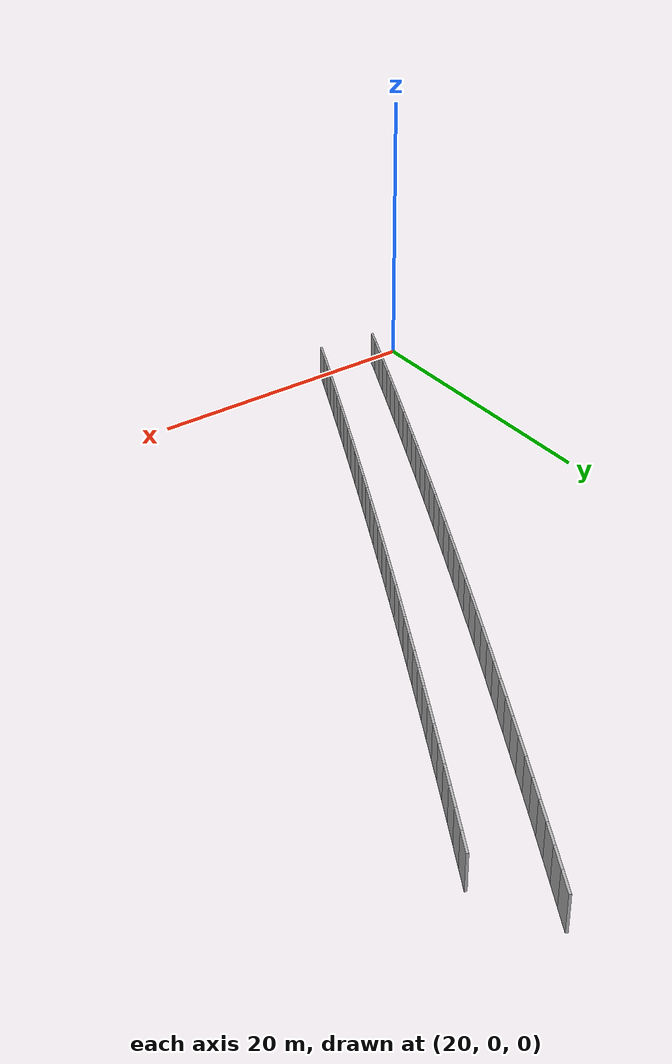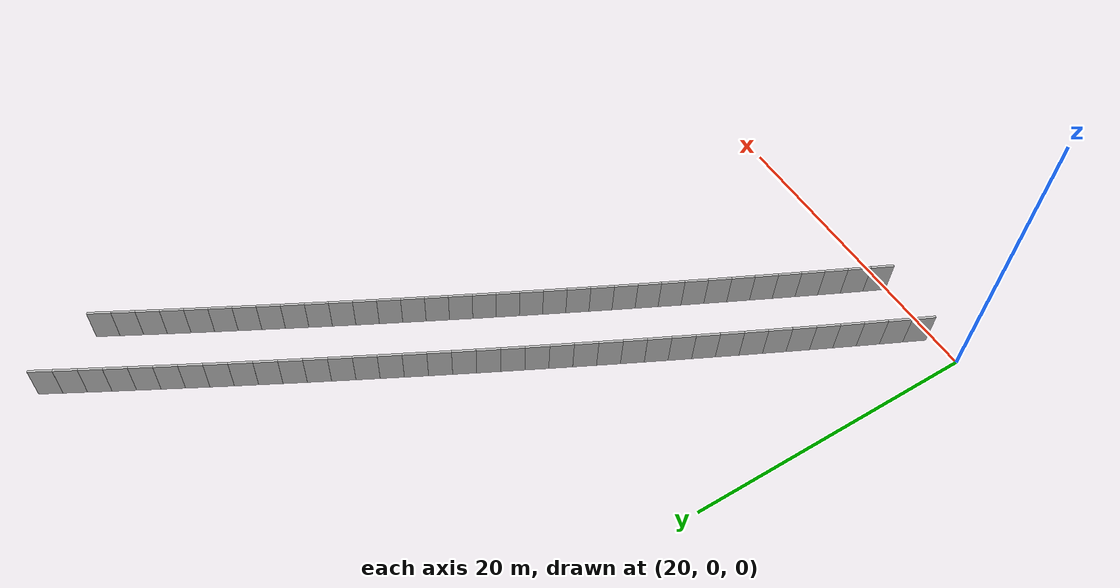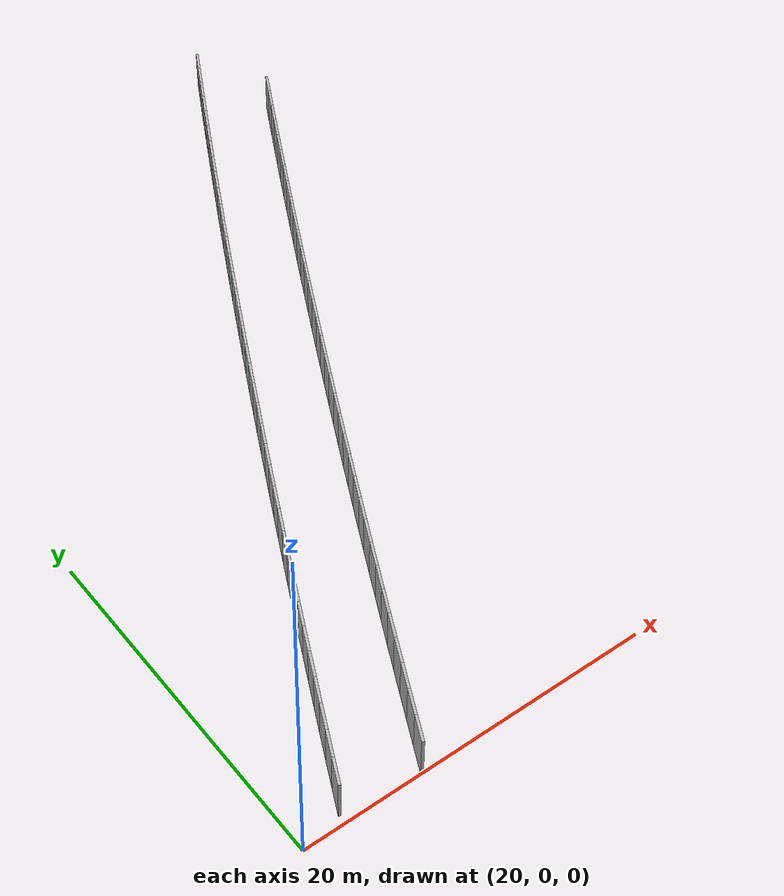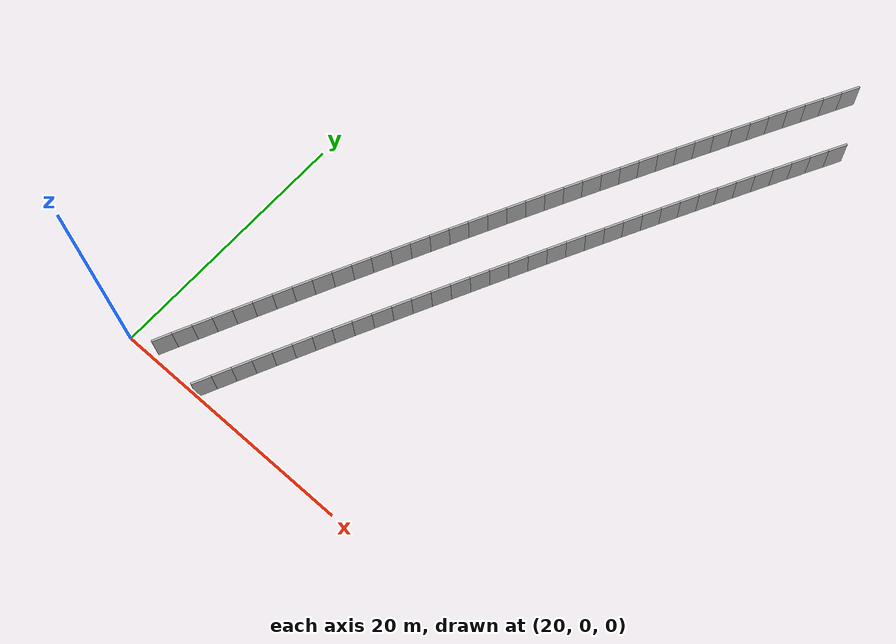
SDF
<?xml version="1.0" ?>
<sdf version="1.6">
  <model name="sps_0434">
    <pose frame="">0 0 0 0 -0 0</pose>
    <static>1</static>
    <self_collide>0</self_collide>
    <allow_auto_disable>0</allow_auto_disable>
    <link name="Wall4893">
      <kinematic>0</kinematic>
      <gravity>1</gravity>
      <self_collide>0</self_collide>
      <collision name="collision">
        <geometry>
          <box>
            <size>1.49651 0.15 2.5</size>
          </box>
        </geometry>
        <pose frame="">0 0 0 0 -0 0</pose>
      </collision>
      <visual name="visual">
        <geometry>
          <box>
            <size>1.49651 0.15 2.5</size>
          </box>
        </geometry>
        <pose frame="">0 0 0 0 -0 0</pose>
        <cast_shadows>1</cast_shadows>
        <transparency>0.0</transparency>
      </visual>
      <pose frame="">49.5471 44.6644 1.25 0 0 -2.06954</pose>
    </link>
    <link name="Wall4894">
      <kinematic>0</kinematic>
      <gravity>1</gravity>
      <self_collide>0</self_collide>
      <collision name="collision">
        <geometry>
          <box>
            <size>1.49649 0.15 2.5</size>
          </box>
        </geometry>
        <pose frame="">0 0 0 0 -0 0</pose>
      </collision>
      <visual name="visual">
        <geometry>
          <box>
            <size>1.49649 0.15 2.5</size>
          </box>
        </geometry>
        <pose frame="">0 0 0 0 -0 0</pose>
        <cast_shadows>1</cast_shadows>
        <transparency>0.0</transparency>
      </visual>
      <pose frame="">48.8322 43.3497 1.25 0 0 -2.06816</pose>
    </link>
    <link name="Wall4895">
      <kinematic>0</kinematic>
      <gravity>1</gravity>
      <self_collide>0</self_collide>
      <collision name="collision">
        <geometry>
          <box>
            <size>1.49645 0.15 2.5</size>
          </box>
        </geometry>
        <pose frame="">0 0 0 0 -0 0</pose>
      </collision>
      <visual name="visual">
        <geometry>
          <box>
            <size>1.49645 0.15 2.5</size>
          </box>
        </geometry>
        <pose frame="">0 0 0 0 -0 0</pose>
        <cast_shadows>1</cast_shadows>
        <transparency>0.0</transparency>
      </visual>
      <pose frame="">48.1193 42.034 1.25 0 0 -2.06664</pose>
    </link>
    <link name="Wall4896">
      <kinematic>0</kinematic>
      <gravity>1</gravity>
      <self_collide>0</self_collide>
      <collision name="collision">
        <geometry>
          <box>
            <size>1.49661 0.15 2.5</size>
          </box>
        </geometry>
        <pose frame="">0 0 0 0 -0 0</pose>
      </collision>
      <visual name="visual">
        <geometry>
          <box>
            <size>1.49661 0.15 2.5</size>
          </box>
        </geometry>
        <pose frame="">0 0 0 0 -0 0</pose>
        <cast_shadows>1</cast_shadows>
        <transparency>0.0</transparency>
      </visual>
      <pose frame="">47.4083 40.7171 1.25 0 0 -2.06496</pose>
    </link>
    <link name="Wall4897">
      <kinematic>0</kinematic>
      <gravity>1</gravity>
      <self_collide>0</self_collide>
      <collision name="collision">
        <geometry>
          <box>
            <size>1.49646 0.15 2.5</size>
          </box>
        </geometry>
        <pose frame="">0 0 0 0 -0 0</pose>
      </collision>
      <visual name="visual">
        <geometry>
          <box>
            <size>1.49646 0.15 2.5</size>
          </box>
        </geometry>
        <pose frame="">0 0 0 0 -0 0</pose>
        <cast_shadows>1</cast_shadows>
        <transparency>0.0</transparency>
      </visual>
      <pose frame="">46.6996 39.399 1.25 0 0 -2.0633</pose>
    </link>
    <link name="Wall4898">
      <kinematic>0</kinematic>
      <gravity>1</gravity>
      <self_collide>0</self_collide>
      <collision name="collision">
        <geometry>
          <box>
            <size>1.49658 0.15 2.5</size>
          </box>
        </geometry>
        <pose frame="">0 0 0 0 -0 0</pose>
      </collision>
      <visual name="visual">
        <geometry>
          <box>
            <size>1.49658 0.15 2.5</size>
          </box>
        </geometry>
        <pose frame="">0 0 0 0 -0 0</pose>
        <cast_shadows>1</cast_shadows>
        <transparency>0.0</transparency>
      </visual>
      <pose frame="">45.9931 38.0798 1.25 0 0 -2.06173</pose>
    </link>
    <link name="Wall4899">
      <kinematic>0</kinematic>
      <gravity>1</gravity>
      <self_collide>0</self_collide>
      <collision name="collision">
        <geometry>
          <box>
            <size>1.49652 0.15 2.5</size>
          </box>
        </geometry>
        <pose frame="">0 0 0 0 -0 0</pose>
      </collision>
      <visual name="visual">
        <geometry>
          <box>
            <size>1.49652 0.15 2.5</size>
          </box>
        </geometry>
        <pose frame="">0 0 0 0 -0 0</pose>
        <cast_shadows>1</cast_shadows>
        <transparency>0.0</transparency>
      </visual>
      <pose frame="">45.2885 36.7595 1.25 0 0 -2.06027</pose>
    </link>
    <link name="Wall4900">
      <kinematic>0</kinematic>
      <gravity>1</gravity>
      <self_collide>0</self_collide>
      <collision name="collision">
        <geometry>
          <box>
            <size>1.49652 0.15 2.5</size>
          </box>
        </geometry>
        <pose frame="">0 0 0 0 -0 0</pose>
      </collision>
      <visual name="visual">
        <geometry>
          <box>
            <size>1.49652 0.15 2.5</size>
          </box>
        </geometry>
        <pose frame="">0 0 0 0 -0 0</pose>
        <cast_shadows>1</cast_shadows>
        <transparency>0.0</transparency>
      </visual>
      <pose frame="">44.586 35.4381 1.25 0 0 -2.05861</pose>
    </link>
    <link name="Wall4901">
      <kinematic>0</kinematic>
      <gravity>1</gravity>
      <self_collide>0</self_collide>
      <collision name="collision">
        <geometry>
          <box>
            <size>1.49641 0.15 2.5</size>
          </box>
        </geometry>
        <pose frame="">0 0 0 0 -0 0</pose>
      </collision>
      <visual name="visual">
        <geometry>
          <box>
            <size>1.49641 0.15 2.5</size>
          </box>
        </geometry>
        <pose frame="">0 0 0 0 -0 0</pose>
        <cast_shadows>1</cast_shadows>
        <transparency>0.0</transparency>
      </visual>
      <pose frame="">43.8856 34.1156 1.25 0 0 -2.05699</pose>
    </link>
    <link name="Wall4902">
      <kinematic>0</kinematic>
      <gravity>1</gravity>
      <self_collide>0</self_collide>
      <collision name="collision">
        <geometry>
          <box>
            <size>1.49655 0.15 2.5</size>
          </box>
        </geometry>
        <pose frame="">0 0 0 0 -0 0</pose>
      </collision>
      <visual name="visual">
        <geometry>
          <box>
            <size>1.49655 0.15 2.5</size>
          </box>
        </geometry>
        <pose frame="">0 0 0 0 -0 0</pose>
        <cast_shadows>1</cast_shadows>
        <transparency>0.0</transparency>
      </visual>
      <pose frame="">43.1874 32.792 1.25 0 0 -2.05542</pose>
    </link>
    <link name="Wall4903">
      <kinematic>0</kinematic>
      <gravity>1</gravity>
      <self_collide>0</self_collide>
      <collision name="collision">
        <geometry>
          <box>
            <size>1.49647 0.15 2.5</size>
          </box>
        </geometry>
        <pose frame="">0 0 0 0 -0 0</pose>
      </collision>
      <visual name="visual">
        <geometry>
          <box>
            <size>1.49647 0.15 2.5</size>
          </box>
        </geometry>
        <pose frame="">0 0 0 0 -0 0</pose>
        <cast_shadows>1</cast_shadows>
        <transparency>0.0</transparency>
      </visual>
      <pose frame="">42.4912 31.4673 1.25 0 0 -2.05393</pose>
    </link>
    <link name="Wall4904">
      <kinematic>0</kinematic>
      <gravity>1</gravity>
      <self_collide>0</self_collide>
      <collision name="collision">
        <geometry>
          <box>
            <size>1.49654 0.15 2.5</size>
          </box>
        </geometry>
        <pose frame="">0 0 0 0 -0 0</pose>
      </collision>
      <visual name="visual">
        <geometry>
          <box>
            <size>1.49654 0.15 2.5</size>
          </box>
        </geometry>
        <pose frame="">0 0 0 0 -0 0</pose>
        <cast_shadows>1</cast_shadows>
        <transparency>0.0</transparency>
      </visual>
      <pose frame="">41.7971 30.1415 1.25 0 0 -2.05225</pose>
    </link>
    <link name="Wall4905">
      <kinematic>0</kinematic>
      <gravity>1</gravity>
      <self_collide>0</self_collide>
      <collision name="collision">
        <geometry>
          <box>
            <size>1.49655 0.15 2.5</size>
          </box>
        </geometry>
        <pose frame="">0 0 0 0 -0 0</pose>
      </collision>
      <visual name="visual">
        <geometry>
          <box>
            <size>1.49655 0.15 2.5</size>
          </box>
        </geometry>
        <pose frame="">0 0 0 0 -0 0</pose>
        <cast_shadows>1</cast_shadows>
        <transparency>0.0</transparency>
      </visual>
      <pose frame="">41.1052 28.8145 1.25 0 0 -2.05059</pose>
    </link>
    <link name="Wall4906">
      <kinematic>0</kinematic>
      <gravity>1</gravity>
      <self_collide>0</self_collide>
      <collision name="collision">
        <geometry>
          <box>
            <size>1.49662 0.15 2.5</size>
          </box>
        </geometry>
        <pose frame="">0 0 0 0 -0 0</pose>
      </collision>
      <visual name="visual">
        <geometry>
          <box>
            <size>1.49662 0.15 2.5</size>
          </box>
        </geometry>
        <pose frame="">0 0 0 0 -0 0</pose>
        <cast_shadows>1</cast_shadows>
        <transparency>0.0</transparency>
      </visual>
      <pose frame="">40.4154 27.4864 1.25 0 0 -2.04918</pose>
    </link>
    <link name="Wall4907">
      <kinematic>0</kinematic>
      <gravity>1</gravity>
      <self_collide>0</self_collide>
      <collision name="collision">
        <geometry>
          <box>
            <size>1.49651 0.15 2.5</size>
          </box>
        </geometry>
        <pose frame="">0 0 0 0 -0 0</pose>
      </collision>
      <visual name="visual">
        <geometry>
          <box>
            <size>1.49651 0.15 2.5</size>
          </box>
        </geometry>
        <pose frame="">0 0 0 0 -0 0</pose>
        <cast_shadows>1</cast_shadows>
        <transparency>0.0</transparency>
      </visual>
      <pose frame="">39.7275 26.1573 1.25 0 0 -2.04761</pose>
    </link>
    <link name="Wall4908">
      <kinematic>0</kinematic>
      <gravity>1</gravity>
      <self_collide>0</self_collide>
      <collision name="collision">
        <geometry>
          <box>
            <size>1.49656 0.15 2.5</size>
          </box>
        </geometry>
        <pose frame="">0 0 0 0 -0 0</pose>
      </collision>
      <visual name="visual">
        <geometry>
          <box>
            <size>1.49656 0.15 2.5</size>
          </box>
        </geometry>
        <pose frame="">0 0 0 0 -0 0</pose>
        <cast_shadows>1</cast_shadows>
        <transparency>0.0</transparency>
      </visual>
      <pose frame="">39.0418 24.8271 1.25 0 0 -2.0459</pose>
    </link>
    <link name="Wall4909">
      <kinematic>0</kinematic>
      <gravity>1</gravity>
      <self_collide>0</self_collide>
      <collision name="collision">
        <geometry>
          <box>
            <size>1.49645 0.15 2.5</size>
          </box>
        </geometry>
        <pose frame="">0 0 0 0 -0 0</pose>
      </collision>
      <visual name="visual">
        <geometry>
          <box>
            <size>1.49645 0.15 2.5</size>
          </box>
        </geometry>
        <pose frame="">0 0 0 0 -0 0</pose>
        <cast_shadows>1</cast_shadows>
        <transparency>0.0</transparency>
      </visual>
      <pose frame="">38.3583 23.4958 1.25 0 0 -2.04433</pose>
    </link>
    <link name="Wall4910">
      <kinematic>0</kinematic>
      <gravity>1</gravity>
      <self_collide>0</self_collide>
      <collision name="collision">
        <geometry>
          <box>
            <size>1.49646 0.15 2.5</size>
          </box>
        </geometry>
        <pose frame="">0 0 0 0 -0 0</pose>
      </collision>
      <visual name="visual">
        <geometry>
          <box>
            <size>1.49646 0.15 2.5</size>
          </box>
        </geometry>
        <pose frame="">0 0 0 0 -0 0</pose>
        <cast_shadows>1</cast_shadows>
        <transparency>0.0</transparency>
      </visual>
      <pose frame="">37.6768 22.1635 1.25 0 0 -2.04282</pose>
    </link>
    <link name="Wall4911">
      <kinematic>0</kinematic>
      <gravity>1</gravity>
      <self_collide>0</self_collide>
      <collision name="collision">
        <geometry>
          <box>
            <size>1.49647 0.15 2.5</size>
          </box>
        </geometry>
        <pose frame="">0 0 0 0 -0 0</pose>
      </collision>
      <visual name="visual">
        <geometry>
          <box>
            <size>1.49647 0.15 2.5</size>
          </box>
        </geometry>
        <pose frame="">0 0 0 0 -0 0</pose>
        <cast_shadows>1</cast_shadows>
        <transparency>0.0</transparency>
      </visual>
      <pose frame="">36.9976 20.8301 1.25 0 0 -2.04112</pose>
    </link>
    <link name="Wall4912">
      <kinematic>0</kinematic>
      <gravity>1</gravity>
      <self_collide>0</self_collide>
      <collision name="collision">
        <geometry>
          <box>
            <size>1.49651 0.15 2.5</size>
          </box>
        </geometry>
        <pose frame="">0 0 0 0 -0 0</pose>
      </collision>
      <visual name="visual">
        <geometry>
          <box>
            <size>1.49651 0.15 2.5</size>
          </box>
        </geometry>
        <pose frame="">0 0 0 0 -0 0</pose>
        <cast_shadows>1</cast_shadows>
        <transparency>0.0</transparency>
      </visual>
      <pose frame="">36.3204 19.4956 1.25 0 0 -2.03964</pose>
    </link>
    <link name="Wall4913">
      <kinematic>0</kinematic>
      <gravity>1</gravity>
      <self_collide>0</self_collide>
      <collision name="collision">
        <geometry>
          <box>
            <size>1.49655 0.15 2.5</size>
          </box>
        </geometry>
        <pose frame="">0 0 0 0 -0 0</pose>
      </collision>
      <visual name="visual">
        <geometry>
          <box>
            <size>1.49655 0.15 2.5</size>
          </box>
        </geometry>
        <pose frame="">0 0 0 0 -0 0</pose>
        <cast_shadows>1</cast_shadows>
        <transparency>0.0</transparency>
      </visual>
      <pose frame="">35.6453 18.16 1.25 0 0 -2.03798</pose>
    </link>
    <link name="Wall4914">
      <kinematic>0</kinematic>
      <gravity>1</gravity>
      <self_collide>0</self_collide>
      <collision name="collision">
        <geometry>
          <box>
            <size>1.49628 0.15 2.5</size>
          </box>
        </geometry>
        <pose frame="">0 0 0 0 -0 0</pose>
      </collision>
      <visual name="visual">
        <geometry>
          <box>
            <size>1.49628 0.15 2.5</size>
          </box>
        </geometry>
        <pose frame="">0 0 0 0 -0 0</pose>
        <cast_shadows>1</cast_shadows>
        <transparency>0.0</transparency>
      </visual>
      <pose frame="">34.9722 16.8235 1.25 0 0 -2.03671</pose>
    </link>
    <link name="Wall4915">
      <kinematic>0</kinematic>
      <gravity>1</gravity>
      <self_collide>0</self_collide>
      <collision name="collision">
        <geometry>
          <box>
            <size>1.49646 0.15 2.5</size>
          </box>
        </geometry>
        <pose frame="">0 0 0 0 -0 0</pose>
      </collision>
      <visual name="visual">
        <geometry>
          <box>
            <size>1.49646 0.15 2.5</size>
          </box>
        </geometry>
        <pose frame="">0 0 0 0 -0 0</pose>
        <cast_shadows>1</cast_shadows>
        <transparency>0.0</transparency>
      </visual>
      <pose frame="">34.3012 15.486 1.25 0 0 -2.03486</pose>
    </link>
    <link name="Wall4916">
      <kinematic>0</kinematic>
      <gravity>1</gravity>
      <self_collide>0</self_collide>
      <collision name="collision">
        <geometry>
          <box>
            <size>1.49657 0.15 2.5</size>
          </box>
        </geometry>
        <pose frame="">0 0 0 0 -0 0</pose>
      </collision>
      <visual name="visual">
        <geometry>
          <box>
            <size>1.49657 0.15 2.5</size>
          </box>
        </geometry>
        <pose frame="">0 0 0 0 -0 0</pose>
        <cast_shadows>1</cast_shadows>
        <transparency>0.0</transparency>
      </visual>
      <pose frame="">33.6325 14.1472 1.25 0 0 -2.03319</pose>
    </link>
    <link name="Wall4917">
      <kinematic>0</kinematic>
      <gravity>1</gravity>
      <self_collide>0</self_collide>
      <collision name="collision">
        <geometry>
          <box>
            <size>1.49655 0.15 2.5</size>
          </box>
        </geometry>
        <pose frame="">0 0 0 0 -0 0</pose>
      </collision>
      <visual name="visual">
        <geometry>
          <box>
            <size>1.49655 0.15 2.5</size>
          </box>
        </geometry>
        <pose frame="">0 0 0 0 -0 0</pose>
        <cast_shadows>1</cast_shadows>
        <transparency>0.0</transparency>
      </visual>
      <pose frame="">32.9659 12.8073 1.25 0 0 -2.03169</pose>
    </link>
    <link name="Wall4918">
      <kinematic>0</kinematic>
      <gravity>1</gravity>
      <self_collide>0</self_collide>
      <collision name="collision">
        <geometry>
          <box>
            <size>1.49653 0.15 2.5</size>
          </box>
        </geometry>
        <pose frame="">0 0 0 0 -0 0</pose>
      </collision>
      <visual name="visual">
        <geometry>
          <box>
            <size>1.49653 0.15 2.5</size>
          </box>
        </geometry>
        <pose frame="">0 0 0 0 -0 0</pose>
        <cast_shadows>1</cast_shadows>
        <transparency>0.0</transparency>
      </visual>
      <pose frame="">32.3014 11.4664 1.25 0 0 -2.0301</pose>
    </link>
    <link name="Wall4919">
      <kinematic>0</kinematic>
      <gravity>1</gravity>
      <self_collide>0</self_collide>
      <collision name="collision">
        <geometry>
          <box>
            <size>1.49657 0.15 2.5</size>
          </box>
        </geometry>
        <pose frame="">0 0 0 0 -0 0</pose>
      </collision>
      <visual name="visual">
        <geometry>
          <box>
            <size>1.49657 0.15 2.5</size>
          </box>
        </geometry>
        <pose frame="">0 0 0 0 -0 0</pose>
        <cast_shadows>1</cast_shadows>
        <transparency>0.0</transparency>
      </visual>
      <pose frame="">31.639 10.1244 1.25 0 0 -2.02841</pose>
    </link>
    <link name="Wall4920">
      <kinematic>0</kinematic>
      <gravity>1</gravity>
      <self_collide>0</self_collide>
      <collision name="collision">
        <geometry>
          <box>
            <size>1.49639 0.15 2.5</size>
          </box>
        </geometry>
        <pose frame="">0 0 0 0 -0 0</pose>
      </collision>
      <visual name="visual">
        <geometry>
          <box>
            <size>1.49639 0.15 2.5</size>
          </box>
        </geometry>
        <pose frame="">0 0 0 0 -0 0</pose>
        <cast_shadows>1</cast_shadows>
        <transparency>0.0</transparency>
      </visual>
      <pose frame="">30.9788 8.78139 1.25 0 0 -2.02697</pose>
    </link>
    <link name="Wall4921">
      <kinematic>0</kinematic>
      <gravity>1</gravity>
      <self_collide>0</self_collide>
      <collision name="collision">
        <geometry>
          <box>
            <size>1.49653 0.15 2.5</size>
          </box>
        </geometry>
        <pose frame="">0 0 0 0 -0 0</pose>
      </collision>
      <visual name="visual">
        <geometry>
          <box>
            <size>1.49653 0.15 2.5</size>
          </box>
        </geometry>
        <pose frame="">0 0 0 0 -0 0</pose>
        <cast_shadows>1</cast_shadows>
        <transparency>0.0</transparency>
      </visual>
      <pose frame="">30.3208 7.43739 1.25 0 0 -2.02529</pose>
    </link>
    <link name="Wall4922">
      <kinematic>0</kinematic>
      <gravity>1</gravity>
      <self_collide>0</self_collide>
      <collision name="collision">
        <geometry>
          <box>
            <size>1.49655 0.15 2.5</size>
          </box>
        </geometry>
        <pose frame="">0 0 0 0 -0 0</pose>
      </collision>
      <visual name="visual">
        <geometry>
          <box>
            <size>1.49655 0.15 2.5</size>
          </box>
        </geometry>
        <pose frame="">0 0 0 0 -0 0</pose>
        <cast_shadows>1</cast_shadows>
        <transparency>0.0</transparency>
      </visual>
      <pose frame="">29.6648 6.0923 1.25 0 0 -2.02383</pose>
    </link>
    <link name="Wall4923">
      <kinematic>0</kinematic>
      <gravity>1</gravity>
      <self_collide>0</self_collide>
      <collision name="collision">
        <geometry>
          <box>
            <size>1.49649 0.15 2.5</size>
          </box>
        </geometry>
        <pose frame="">0 0 0 0 -0 0</pose>
      </collision>
      <visual name="visual">
        <geometry>
          <box>
            <size>1.49649 0.15 2.5</size>
          </box>
        </geometry>
        <pose frame="">0 0 0 0 -0 0</pose>
        <cast_shadows>1</cast_shadows>
        <transparency>0.0</transparency>
      </visual>
      <pose frame="">29.0109 4.7462 1.25 0 0 -2.02217</pose>
    </link>
    <link name="Wall4924">
      <kinematic>0</kinematic>
      <gravity>1</gravity>
      <self_collide>0</self_collide>
      <collision name="collision">
        <geometry>
          <box>
            <size>1.49683 0.15 2.5</size>
          </box>
        </geometry>
        <pose frame="">0 0 0 0 -0 0</pose>
      </collision>
      <visual name="visual">
        <geometry>
          <box>
            <size>1.49683 0.15 2.5</size>
          </box>
        </geometry>
        <pose frame="">0 0 0 0 -0 0</pose>
        <cast_shadows>1</cast_shadows>
        <transparency>0.0</transparency>
      </visual>
      <pose frame="">28.3592 3.39888 1.25 0 0 -2.02047</pose>
    </link>
    <link name="Wall4925">
      <kinematic>0</kinematic>
      <gravity>1</gravity>
      <self_collide>0</self_collide>
      <collision name="collision">
        <geometry>
          <box>
            <size>1.49651 0.15 2.5</size>
          </box>
        </geometry>
        <pose frame="">0 0 0 0 -0 0</pose>
      </collision>
      <visual name="visual">
        <geometry>
          <box>
            <size>1.49651 0.15 2.5</size>
          </box>
        </geometry>
        <pose frame="">0 0 0 0 -0 0</pose>
        <cast_shadows>1</cast_shadows>
        <transparency>0.0</transparency>
      </visual>
      <pose frame="">27.7096 2.05049 1.25 0 0 -2.0189</pose>
    </link>
    <link name="Wall4926">
      <kinematic>0</kinematic>
      <gravity>1</gravity>
      <self_collide>0</self_collide>
      <collision name="collision">
        <geometry>
          <box>
            <size>1.49643 0.15 2.5</size>
          </box>
        </geometry>
        <pose frame="">0 0 0 0 -0 0</pose>
      </collision>
      <visual name="visual">
        <geometry>
          <box>
            <size>1.49643 0.15 2.5</size>
          </box>
        </geometry>
        <pose frame="">0 0 0 0 -0 0</pose>
        <cast_shadows>1</cast_shadows>
        <transparency>0.0</transparency>
      </visual>
      <pose frame="">27.0622 0.701308 1.25 0 0 -2.01748</pose>
    </link>
    <link name="Wall6687">
      <kinematic>0</kinematic>
      <gravity>1</gravity>
      <self_collide>0</self_collide>
      <collision name="collision">
        <geometry>
          <box>
            <size>1.50296 0.15 2.5</size>
          </box>
        </geometry>
        <pose frame="">0 0 0 0 -0 0</pose>
      </collision>
      <visual name="visual">
        <geometry>
          <box>
            <size>1.50296 0.15 2.5</size>
          </box>
        </geometry>
        <pose frame="">0 0 0 0 -0 0</pose>
        <cast_shadows>1</cast_shadows>
        <transparency>0.0</transparency>
      </visual>
      <pose frame="">47.3552 49.2828 1.25 0 0 -2.07299</pose>
    </link>
    <link name="Wall6688">
      <kinematic>0</kinematic>
      <gravity>1</gravity>
      <self_collide>0</self_collide>
      <collision name="collision">
        <geometry>
          <box>
            <size>1.5031 0.15 2.5</size>
          </box>
        </geometry>
        <pose frame="">0 0 0 0 -0 0</pose>
      </collision>
      <visual name="visual">
        <geometry>
          <box>
            <size>1.5031 0.15 2.5</size>
          </box>
        </geometry>
        <pose frame="">0 0 0 0 -0 0</pose>
        <cast_shadows>1</cast_shadows>
        <transparency>0.0</transparency>
      </visual>
      <pose frame="">46.6328 47.9647 1.25 0 0 -2.07123</pose>
    </link>
    <link name="Wall6689">
      <kinematic>0</kinematic>
      <gravity>1</gravity>
      <self_collide>0</self_collide>
      <collision name="collision">
        <geometry>
          <box>
            <size>1.50305 0.15 2.5</size>
          </box>
        </geometry>
        <pose frame="">0 0 0 0 -0 0</pose>
      </collision>
      <visual name="visual">
        <geometry>
          <box>
            <size>1.50305 0.15 2.5</size>
          </box>
        </geometry>
        <pose frame="">0 0 0 0 -0 0</pose>
        <cast_shadows>1</cast_shadows>
        <transparency>0.0</transparency>
      </visual>
      <pose frame="">45.9127 46.6454 1.25 0 0 -2.06972</pose>
    </link>
    <link name="Wall6690">
      <kinematic>0</kinematic>
      <gravity>1</gravity>
      <self_collide>0</self_collide>
      <collision name="collision">
        <geometry>
          <box>
            <size>1.50313 0.15 2.5</size>
          </box>
        </geometry>
        <pose frame="">0 0 0 0 -0 0</pose>
      </collision>
      <visual name="visual">
        <geometry>
          <box>
            <size>1.50313 0.15 2.5</size>
          </box>
        </geometry>
        <pose frame="">0 0 0 0 -0 0</pose>
        <cast_shadows>1</cast_shadows>
        <transparency>0.0</transparency>
      </visual>
      <pose frame="">45.1944 45.325 1.25 0 0 -2.06821</pose>
    </link>
    <link name="Wall6691">
      <kinematic>0</kinematic>
      <gravity>1</gravity>
      <self_collide>0</self_collide>
      <collision name="collision">
        <geometry>
          <box>
            <size>1.50297 0.15 2.5</size>
          </box>
        </geometry>
        <pose frame="">0 0 0 0 -0 0</pose>
      </collision>
      <visual name="visual">
        <geometry>
          <box>
            <size>1.50297 0.15 2.5</size>
          </box>
        </geometry>
        <pose frame="">0 0 0 0 -0 0</pose>
        <cast_shadows>1</cast_shadows>
        <transparency>0.0</transparency>
      </visual>
      <pose frame="">44.4784 44.0035 1.25 0 0 -2.06656</pose>
    </link>
    <link name="Wall6692">
      <kinematic>0</kinematic>
      <gravity>1</gravity>
      <self_collide>0</self_collide>
      <collision name="collision">
        <geometry>
          <box>
            <size>1.50314 0.15 2.5</size>
          </box>
        </geometry>
        <pose frame="">0 0 0 0 -0 0</pose>
      </collision>
      <visual name="visual">
        <geometry>
          <box>
            <size>1.50314 0.15 2.5</size>
          </box>
        </geometry>
        <pose frame="">0 0 0 0 -0 0</pose>
        <cast_shadows>1</cast_shadows>
        <transparency>0.0</transparency>
      </visual>
      <pose frame="">43.7645 42.6808 1.25 0 0 -2.06488</pose>
    </link>
    <link name="Wall6693">
      <kinematic>0</kinematic>
      <gravity>1</gravity>
      <self_collide>0</self_collide>
      <collision name="collision">
        <geometry>
          <box>
            <size>1.5031 0.15 2.5</size>
          </box>
        </geometry>
        <pose frame="">0 0 0 0 -0 0</pose>
      </collision>
      <visual name="visual">
        <geometry>
          <box>
            <size>1.5031 0.15 2.5</size>
          </box>
        </geometry>
        <pose frame="">0 0 0 0 -0 0</pose>
        <cast_shadows>1</cast_shadows>
        <transparency>0.0</transparency>
      </visual>
      <pose frame="">43.0526 41.3569 1.25 0 0 -2.06338</pose>
    </link>
    <link name="Wall6694">
      <kinematic>0</kinematic>
      <gravity>1</gravity>
      <self_collide>0</self_collide>
      <collision name="collision">
        <geometry>
          <box>
            <size>1.50306 0.15 2.5</size>
          </box>
        </geometry>
        <pose frame="">0 0 0 0 -0 0</pose>
      </collision>
      <visual name="visual">
        <geometry>
          <box>
            <size>1.50306 0.15 2.5</size>
          </box>
        </geometry>
        <pose frame="">0 0 0 0 -0 0</pose>
        <cast_shadows>1</cast_shadows>
        <transparency>0.0</transparency>
      </visual>
      <pose frame="">42.3428 40.032 1.25 0 0 -2.06187</pose>
    </link>
    <link name="Wall6695">
      <kinematic>0</kinematic>
      <gravity>1</gravity>
      <self_collide>0</self_collide>
      <collision name="collision">
        <geometry>
          <box>
            <size>1.50318 0.15 2.5</size>
          </box>
        </geometry>
        <pose frame="">0 0 0 0 -0 0</pose>
      </collision>
      <visual name="visual">
        <geometry>
          <box>
            <size>1.50318 0.15 2.5</size>
          </box>
        </geometry>
        <pose frame="">0 0 0 0 -0 0</pose>
        <cast_shadows>1</cast_shadows>
        <transparency>0.0</transparency>
      </visual>
      <pose frame="">41.6352 38.7059 1.25 0 0 -2.06012</pose>
    </link>
    <link name="Wall6696">
      <kinematic>0</kinematic>
      <gravity>1</gravity>
      <self_collide>0</self_collide>
      <collision name="collision">
        <geometry>
          <box>
            <size>1.50309 0.15 2.5</size>
          </box>
        </geometry>
        <pose frame="">0 0 0 0 -0 0</pose>
      </collision>
      <visual name="visual">
        <geometry>
          <box>
            <size>1.50309 0.15 2.5</size>
          </box>
        </geometry>
        <pose frame="">0 0 0 0 -0 0</pose>
        <cast_shadows>1</cast_shadows>
        <transparency>0.0</transparency>
      </visual>
      <pose frame="">40.9297 37.3786 1.25 0 0 -2.05854</pose>
    </link>
    <link name="Wall6697">
      <kinematic>0</kinematic>
      <gravity>1</gravity>
      <self_collide>0</self_collide>
      <collision name="collision">
        <geometry>
          <box>
            <size>1.50302 0.15 2.5</size>
          </box>
        </geometry>
        <pose frame="">0 0 0 0 -0 0</pose>
      </collision>
      <visual name="visual">
        <geometry>
          <box>
            <size>1.50302 0.15 2.5</size>
          </box>
        </geometry>
        <pose frame="">0 0 0 0 -0 0</pose>
        <cast_shadows>1</cast_shadows>
        <transparency>0.0</transparency>
      </visual>
      <pose frame="">40.2263 36.0503 1.25 0 0 -2.05706</pose>
    </link>
    <link name="Wall6698">
      <kinematic>0</kinematic>
      <gravity>1</gravity>
      <self_collide>0</self_collide>
      <collision name="collision">
        <geometry>
          <box>
            <size>1.50297 0.15 2.5</size>
          </box>
        </geometry>
        <pose frame="">0 0 0 0 -0 0</pose>
      </collision>
      <visual name="visual">
        <geometry>
          <box>
            <size>1.50297 0.15 2.5</size>
          </box>
        </geometry>
        <pose frame="">0 0 0 0 -0 0</pose>
        <cast_shadows>1</cast_shadows>
        <transparency>0.0</transparency>
      </visual>
      <pose frame="">39.5249 34.721 1.25 0 0 -2.0556</pose>
    </link>
    <link name="Wall6699">
      <kinematic>0</kinematic>
      <gravity>1</gravity>
      <self_collide>0</self_collide>
      <collision name="collision">
        <geometry>
          <box>
            <size>1.50313 0.15 2.5</size>
          </box>
        </geometry>
        <pose frame="">0 0 0 0 -0 0</pose>
      </collision>
      <visual name="visual">
        <geometry>
          <box>
            <size>1.50313 0.15 2.5</size>
          </box>
        </geometry>
        <pose frame="">0 0 0 0 -0 0</pose>
        <cast_shadows>1</cast_shadows>
        <transparency>0.0</transparency>
      </visual>
      <pose frame="">38.8256 33.3905 1.25 0 0 -2.05371</pose>
    </link>
    <link name="Wall6700">
      <kinematic>0</kinematic>
      <gravity>1</gravity>
      <self_collide>0</self_collide>
      <collision name="collision">
        <geometry>
          <box>
            <size>1.50301 0.15 2.5</size>
          </box>
        </geometry>
        <pose frame="">0 0 0 0 -0 0</pose>
      </collision>
      <visual name="visual">
        <geometry>
          <box>
            <size>1.50301 0.15 2.5</size>
          </box>
        </geometry>
        <pose frame="">0 0 0 0 -0 0</pose>
        <cast_shadows>1</cast_shadows>
        <transparency>0.0</transparency>
      </visual>
      <pose frame="">38.1287 32.0588 1.25 0 0 -2.05224</pose>
    </link>
    <link name="Wall6701">
      <kinematic>0</kinematic>
      <gravity>1</gravity>
      <self_collide>0</self_collide>
      <collision name="collision">
        <geometry>
          <box>
            <size>1.50324 0.15 2.5</size>
          </box>
        </geometry>
        <pose frame="">0 0 0 0 -0 0</pose>
      </collision>
      <visual name="visual">
        <geometry>
          <box>
            <size>1.50324 0.15 2.5</size>
          </box>
        </geometry>
        <pose frame="">0 0 0 0 -0 0</pose>
        <cast_shadows>1</cast_shadows>
        <transparency>0.0</transparency>
      </visual>
      <pose frame="">37.4336 30.726 1.25 0 0 -2.0507</pose>
    </link>
    <link name="Wall6702">
      <kinematic>0</kinematic>
      <gravity>1</gravity>
      <self_collide>0</self_collide>
      <collision name="collision">
        <geometry>
          <box>
            <size>1.50315 0.15 2.5</size>
          </box>
        </geometry>
        <pose frame="">0 0 0 0 -0 0</pose>
      </collision>
      <visual name="visual">
        <geometry>
          <box>
            <size>1.50315 0.15 2.5</size>
          </box>
        </geometry>
        <pose frame="">0 0 0 0 -0 0</pose>
        <cast_shadows>1</cast_shadows>
        <transparency>0.0</transparency>
      </visual>
      <pose frame="">36.7407 29.3921 1.25 0 0 -2.04917</pose>
    </link>
    <link name="Wall6703">
      <kinematic>0</kinematic>
      <gravity>1</gravity>
      <self_collide>0</self_collide>
      <collision name="collision">
        <geometry>
          <box>
            <size>1.50295 0.15 2.5</size>
          </box>
        </geometry>
        <pose frame="">0 0 0 0 -0 0</pose>
      </collision>
      <visual name="visual">
        <geometry>
          <box>
            <size>1.50295 0.15 2.5</size>
          </box>
        </geometry>
        <pose frame="">0 0 0 0 -0 0</pose>
        <cast_shadows>1</cast_shadows>
        <transparency>0.0</transparency>
      </visual>
      <pose frame="">36.0499 28.0572 1.25 0 0 -2.0475</pose>
    </link>
    <link name="Wall6704">
      <kinematic>0</kinematic>
      <gravity>1</gravity>
      <self_collide>0</self_collide>
      <collision name="collision">
        <geometry>
          <box>
            <size>1.5032 0.15 2.5</size>
          </box>
        </geometry>
        <pose frame="">0 0 0 0 -0 0</pose>
      </collision>
      <visual name="visual">
        <geometry>
          <box>
            <size>1.5032 0.15 2.5</size>
          </box>
        </geometry>
        <pose frame="">0 0 0 0 -0 0</pose>
        <cast_shadows>1</cast_shadows>
        <transparency>0.0</transparency>
      </visual>
      <pose frame="">35.3611 26.7212 1.25 0 0 -2.04605</pose>
    </link>
    <link name="Wall6705">
      <kinematic>0</kinematic>
      <gravity>1</gravity>
      <self_collide>0</self_collide>
      <collision name="collision">
        <geometry>
          <box>
            <size>1.50295 0.15 2.5</size>
          </box>
        </geometry>
        <pose frame="">0 0 0 0 -0 0</pose>
      </collision>
      <visual name="visual">
        <geometry>
          <box>
            <size>1.50295 0.15 2.5</size>
          </box>
        </geometry>
        <pose frame="">0 0 0 0 -0 0</pose>
        <cast_shadows>1</cast_shadows>
        <transparency>0.0</transparency>
      </visual>
      <pose frame="">34.6746 25.3841 1.25 0 0 -2.04431</pose>
    </link>
    <link name="Wall6706">
      <kinematic>0</kinematic>
      <gravity>1</gravity>
      <self_collide>0</self_collide>
      <collision name="collision">
        <geometry>
          <box>
            <size>1.50306 0.15 2.5</size>
          </box>
        </geometry>
        <pose frame="">0 0 0 0 -0 0</pose>
      </collision>
      <visual name="visual">
        <geometry>
          <box>
            <size>1.50306 0.15 2.5</size>
          </box>
        </geometry>
        <pose frame="">0 0 0 0 -0 0</pose>
        <cast_shadows>1</cast_shadows>
        <transparency>0.0</transparency>
      </visual>
      <pose frame="">33.9903 24.0459 1.25 0 0 -2.04267</pose>
    </link>
    <link name="Wall6707">
      <kinematic>0</kinematic>
      <gravity>1</gravity>
      <self_collide>0</self_collide>
      <collision name="collision">
        <geometry>
          <box>
            <size>1.50318 0.15 2.5</size>
          </box>
        </geometry>
        <pose frame="">0 0 0 0 -0 0</pose>
      </collision>
      <visual name="visual">
        <geometry>
          <box>
            <size>1.50318 0.15 2.5</size>
          </box>
        </geometry>
        <pose frame="">0 0 0 0 -0 0</pose>
        <cast_shadows>1</cast_shadows>
        <transparency>0.0</transparency>
      </visual>
      <pose frame="">33.308 22.7065 1.25 0 0 -2.04113</pose>
    </link>
    <link name="Wall6708">
      <kinematic>0</kinematic>
      <gravity>1</gravity>
      <self_collide>0</self_collide>
      <collision name="collision">
        <geometry>
          <box>
            <size>1.50303 0.15 2.5</size>
          </box>
        </geometry>
        <pose frame="">0 0 0 0 -0 0</pose>
      </collision>
      <visual name="visual">
        <geometry>
          <box>
            <size>1.50303 0.15 2.5</size>
          </box>
        </geometry>
        <pose frame="">0 0 0 0 -0 0</pose>
        <cast_shadows>1</cast_shadows>
        <transparency>0.0</transparency>
      </visual>
      <pose frame="">32.6278 21.3661 1.25 0 0 -2.03967</pose>
    </link>
    <link name="Wall6709">
      <kinematic>0</kinematic>
      <gravity>1</gravity>
      <self_collide>0</self_collide>
      <collision name="collision">
        <geometry>
          <box>
            <size>1.50308 0.15 2.5</size>
          </box>
        </geometry>
        <pose frame="">0 0 0 0 -0 0</pose>
      </collision>
      <visual name="visual">
        <geometry>
          <box>
            <size>1.50308 0.15 2.5</size>
          </box>
        </geometry>
        <pose frame="">0 0 0 0 -0 0</pose>
        <cast_shadows>1</cast_shadows>
        <transparency>0.0</transparency>
      </visual>
      <pose frame="">31.9497 20.0247 1.25 0 0 -2.03802</pose>
    </link>
    <link name="Wall6710">
      <kinematic>0</kinematic>
      <gravity>1</gravity>
      <self_collide>0</self_collide>
      <collision name="collision">
        <geometry>
          <box>
            <size>1.5031 0.15 2.5</size>
          </box>
        </geometry>
        <pose frame="">0 0 0 0 -0 0</pose>
      </collision>
      <visual name="visual">
        <geometry>
          <box>
            <size>1.5031 0.15 2.5</size>
          </box>
        </geometry>
        <pose frame="">0 0 0 0 -0 0</pose>
        <cast_shadows>1</cast_shadows>
        <transparency>0.0</transparency>
      </visual>
      <pose frame="">31.2737 18.6822 1.25 0 0 -2.03651</pose>
    </link>
    <link name="Wall6711">
      <kinematic>0</kinematic>
      <gravity>1</gravity>
      <self_collide>0</self_collide>
      <collision name="collision">
        <geometry>
          <box>
            <size>1.50266 0.15 2.5</size>
          </box>
        </geometry>
        <pose frame="">0 0 0 0 -0 0</pose>
      </collision>
      <visual name="visual">
        <geometry>
          <box>
            <size>1.50266 0.15 2.5</size>
          </box>
        </geometry>
        <pose frame="">0 0 0 0 -0 0</pose>
        <cast_shadows>1</cast_shadows>
        <transparency>0.0</transparency>
      </visual>
      <pose frame="">30.5998 17.3389 1.25 0 0 -2.03503</pose>
    </link>
    <link name="Wall6712">
      <kinematic>0</kinematic>
      <gravity>1</gravity>
      <self_collide>0</self_collide>
      <collision name="collision">
        <geometry>
          <box>
            <size>1.50326 0.15 2.5</size>
          </box>
        </geometry>
        <pose frame="">0 0 0 0 -0 0</pose>
      </collision>
      <visual name="visual">
        <geometry>
          <box>
            <size>1.50326 0.15 2.5</size>
          </box>
        </geometry>
        <pose frame="">0 0 0 0 -0 0</pose>
        <cast_shadows>1</cast_shadows>
        <transparency>0.0</transparency>
      </visual>
      <pose frame="">29.9282 15.9944 1.25 0 0 -2.03319</pose>
    </link>
    <link name="Wall6713">
      <kinematic>0</kinematic>
      <gravity>1</gravity>
      <self_collide>0</self_collide>
      <collision name="collision">
        <geometry>
          <box>
            <size>1.50299 0.15 2.5</size>
          </box>
        </geometry>
        <pose frame="">0 0 0 0 -0 0</pose>
      </collision>
      <visual name="visual">
        <geometry>
          <box>
            <size>1.50299 0.15 2.5</size>
          </box>
        </geometry>
        <pose frame="">0 0 0 0 -0 0</pose>
        <cast_shadows>1</cast_shadows>
        <transparency>0.0</transparency>
      </visual>
      <pose frame="">29.2587 14.6486 1.25 0 0 -2.03165</pose>
    </link>
    <link name="Wall6714">
      <kinematic>0</kinematic>
      <gravity>1</gravity>
      <self_collide>0</self_collide>
      <collision name="collision">
        <geometry>
          <box>
            <size>1.50327 0.15 2.5</size>
          </box>
        </geometry>
        <pose frame="">0 0 0 0 -0 0</pose>
      </collision>
      <visual name="visual">
        <geometry>
          <box>
            <size>1.50327 0.15 2.5</size>
          </box>
        </geometry>
        <pose frame="">0 0 0 0 -0 0</pose>
        <cast_shadows>1</cast_shadows>
        <transparency>0.0</transparency>
      </visual>
      <pose frame="">28.5914 13.3017 1.25 0 0 -2.02992</pose>
    </link>
    <link name="Wall6715">
      <kinematic>0</kinematic>
      <gravity>1</gravity>
      <self_collide>0</self_collide>
      <collision name="collision">
        <geometry>
          <box>
            <size>1.5032 0.15 2.5</size>
          </box>
        </geometry>
        <pose frame="">0 0 0 0 -0 0</pose>
      </collision>
      <visual name="visual">
        <geometry>
          <box>
            <size>1.5032 0.15 2.5</size>
          </box>
        </geometry>
        <pose frame="">0 0 0 0 -0 0</pose>
        <cast_shadows>1</cast_shadows>
        <transparency>0.0</transparency>
      </visual>
      <pose frame="">27.926 11.9537 1.25 0 0 -2.02863</pose>
    </link>
    <link name="Wall6716">
      <kinematic>0</kinematic>
      <gravity>1</gravity>
      <self_collide>0</self_collide>
      <collision name="collision">
        <geometry>
          <box>
            <size>1.50306 0.15 2.5</size>
          </box>
        </geometry>
        <pose frame="">0 0 0 0 -0 0</pose>
      </collision>
      <visual name="visual">
        <geometry>
          <box>
            <size>1.50306 0.15 2.5</size>
          </box>
        </geometry>
        <pose frame="">0 0 0 0 -0 0</pose>
        <cast_shadows>1</cast_shadows>
        <transparency>0.0</transparency>
      </visual>
      <pose frame="">27.2628 10.6048 1.25 0 0 -2.02687</pose>
    </link>
    <link name="Wall6717">
      <kinematic>0</kinematic>
      <gravity>1</gravity>
      <self_collide>0</self_collide>
      <collision name="collision">
        <geometry>
          <box>
            <size>1.50297 0.15 2.5</size>
          </box>
        </geometry>
        <pose frame="">0 0 0 0 -0 0</pose>
      </collision>
      <visual name="visual">
        <geometry>
          <box>
            <size>1.50297 0.15 2.5</size>
          </box>
        </geometry>
        <pose frame="">0 0 0 0 -0 0</pose>
        <cast_shadows>1</cast_shadows>
        <transparency>0.0</transparency>
      </visual>
      <pose frame="">26.602 9.25487 1.25 0 0 -2.02527</pose>
    </link>
    <link name="Wall6718">
      <kinematic>0</kinematic>
      <gravity>1</gravity>
      <self_collide>0</self_collide>
      <collision name="collision">
        <geometry>
          <box>
            <size>1.50313 0.15 2.5</size>
          </box>
        </geometry>
        <pose frame="">0 0 0 0 -0 0</pose>
      </collision>
      <visual name="visual">
        <geometry>
          <box>
            <size>1.50313 0.15 2.5</size>
          </box>
        </geometry>
        <pose frame="">0 0 0 0 -0 0</pose>
        <cast_shadows>1</cast_shadows>
        <transparency>0.0</transparency>
      </visual>
      <pose frame="">25.9432 7.90388 1.25 0 0 -2.02373</pose>
    </link>
    <link name="Wall6719">
      <kinematic>0</kinematic>
      <gravity>1</gravity>
      <self_collide>0</self_collide>
      <collision name="collision">
        <geometry>
          <box>
            <size>1.50313 0.15 2.5</size>
          </box>
        </geometry>
        <pose frame="">0 0 0 0 -0 0</pose>
      </collision>
      <visual name="visual">
        <geometry>
          <box>
            <size>1.50313 0.15 2.5</size>
          </box>
        </geometry>
        <pose frame="">0 0 0 0 -0 0</pose>
        <cast_shadows>1</cast_shadows>
        <transparency>0.0</transparency>
      </visual>
      <pose frame="">25.2865 6.5518 1.25 0 0 -2.02215</pose>
    </link>
    <link name="Wall6720">
      <kinematic>0</kinematic>
      <gravity>1</gravity>
      <self_collide>0</self_collide>
      <collision name="collision">
        <geometry>
          <box>
            <size>1.50316 0.15 2.5</size>
          </box>
        </geometry>
        <pose frame="">0 0 0 0 -0 0</pose>
      </collision>
      <visual name="visual">
        <geometry>
          <box>
            <size>1.50316 0.15 2.5</size>
          </box>
        </geometry>
        <pose frame="">0 0 0 0 -0 0</pose>
        <cast_shadows>1</cast_shadows>
        <transparency>0.0</transparency>
      </visual>
      <pose frame="">24.6319 5.19868 1.25 0 0 -2.02061</pose>
    </link>
    <link name="Wall6721">
      <kinematic>0</kinematic>
      <gravity>1</gravity>
      <self_collide>0</self_collide>
      <collision name="collision">
        <geometry>
          <box>
            <size>1.50298 0.15 2.5</size>
          </box>
        </geometry>
        <pose frame="">0 0 0 0 -0 0</pose>
      </collision>
      <visual name="visual">
        <geometry>
          <box>
            <size>1.50298 0.15 2.5</size>
          </box>
        </geometry>
        <pose frame="">0 0 0 0 -0 0</pose>
        <cast_shadows>1</cast_shadows>
        <transparency>0.0</transparency>
      </visual>
      <pose frame="">23.9795 3.84459 1.25 0 0 -2.01895</pose>
    </link>
    <link name="Wall6722">
      <kinematic>0</kinematic>
      <gravity>1</gravity>
      <self_collide>0</self_collide>
      <collision name="collision">
        <geometry>
          <box>
            <size>1.50301 0.15 2.5</size>
          </box>
        </geometry>
        <pose frame="">0 0 0 0 -0 0</pose>
      </collision>
      <visual name="visual">
        <geometry>
          <box>
            <size>1.50301 0.15 2.5</size>
          </box>
        </geometry>
        <pose frame="">0 0 0 0 -0 0</pose>
        <cast_shadows>1</cast_shadows>
        <transparency>0.0</transparency>
      </visual>
      <pose frame="">23.3292 2.48952 1.25 0 0 -2.01741</pose>
    </link>
    <link name="Wall6723">
      <kinematic>0</kinematic>
      <gravity>1</gravity>
      <self_collide>0</self_collide>
      <collision name="collision">
        <geometry>
          <box>
            <size>1.50311 0.15 2.5</size>
          </box>
        </geometry>
        <pose frame="">0 0 0 0 -0 0</pose>
      </collision>
      <visual name="visual">
        <geometry>
          <box>
            <size>1.50311 0.15 2.5</size>
          </box>
        </geometry>
        <pose frame="">0 0 0 0 -0 0</pose>
        <cast_shadows>1</cast_shadows>
        <transparency>0.0</transparency>
      </visual>
      <pose frame="">22.6811 1.13341 1.25 0 0 -2.01594</pose>
    </link>
  </model>
</sdf>
